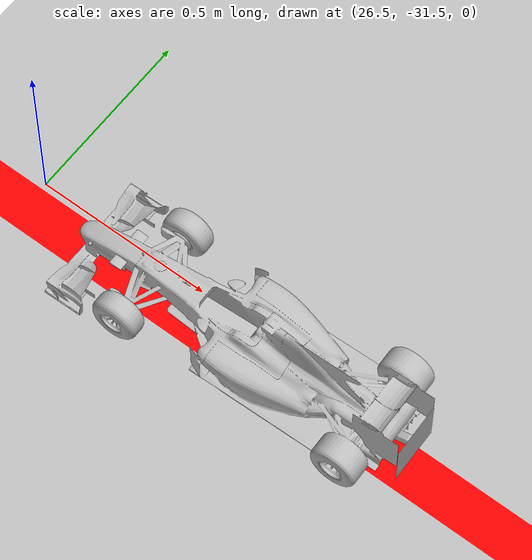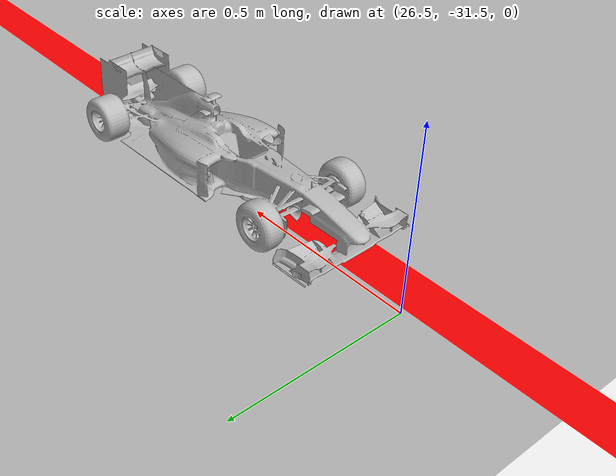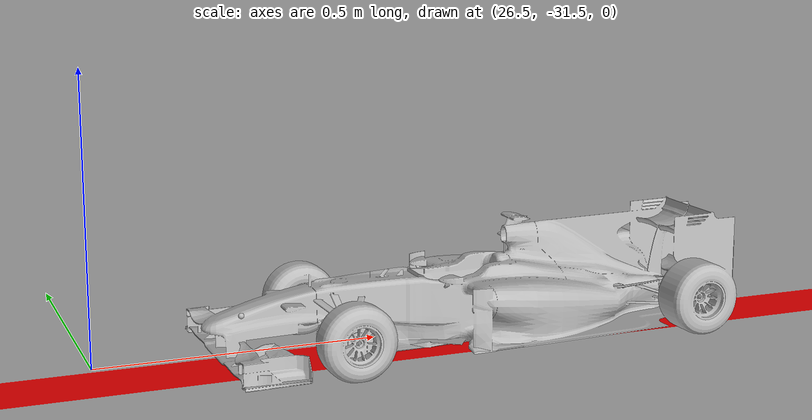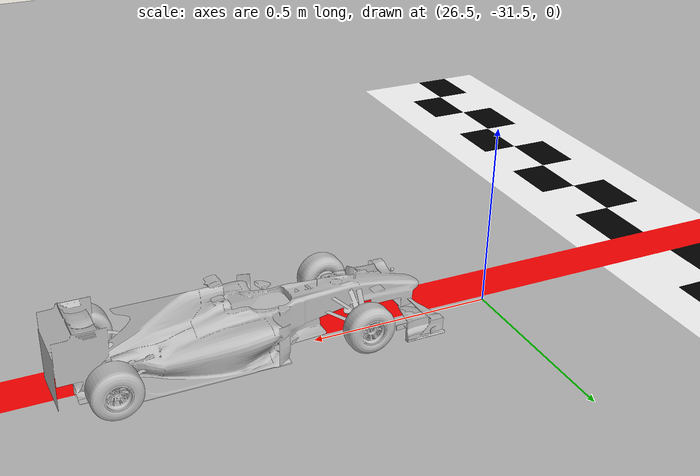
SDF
<?xml version="1.0"?>
<sdf version="1.4">
<world name="default">
    <include>
        <uri>model://montmelo_line</uri>
        <pose>0 0 0 0 0 0</pose>
    </include>
    <include>
        <uri>model://f1_renault</uri>
        <!-- NORMAL-->
        <pose>27.18 -31.55 0.00 0.00 0.01 -3.12</pose>
        <!-- 1st difficult turn -->
        <!-- 2nd diffult turn -->
        <!-- 180º turn NORMAL -->
    </include>
    <gui fullscreen='0'>
        <camera name='user_camera'>
        <pose frame=''>36.59 -32.77 2.64 0.00 0.23 2.85</pose>
        <view_controller>orbit</view_controller>
        <projection_type>perspective</projection_type>
        </camera>
    </gui>
    <scene>
        <sky>
            <clouds>
                <speed>12</speed>
            </clouds>
        </sky>
    </scene>
</world>
</sdf>

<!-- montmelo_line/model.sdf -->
<sdf version="1.4">
  <model name="montmelo">
    <static>true</static>
    <link name="montmelo">
      <pose>0 0 0 0 0 0</pose>
      <collision name="collision">
        <geometry>
          <plane>
            <size> 700 500</size>
          </plane>
        </geometry>
      </collision>
      <visual name="visual">
        <geometry>
          <mesh>
            <uri>model://montmelo_line/meshes/montmelo.dae</uri>
          </mesh>
        </geometry>
      </visual>
    </link>
    <link name="pared">
      <collision name="collision">
        <geometry>
          <mesh>
            <uri>model://montmelo_line/meshes/pared.stl</uri>
          </mesh>
        </geometry>
      </collision>
    </link>
  </model>
</sdf>

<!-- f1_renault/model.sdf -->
<sdf version="1.9">
  <model name="f1_renault">
    <pose>0 0 0 0 0 0</pose>
    <static>false</static>

    <link name="f1">
      <pose>0 0 0 0 0 0</pose>
      <inertial>
        <mass>10</mass>
        <inertia>
          <ixx>1</ixx>
          <ixy>0.0</ixy>
          <iyy>1</iyy>
          <ixz>0.0</ixz>
          <iyz>0.0</iyz>
          <izz>1.0</izz>
        </inertia>
      </inertial>

      <collision name="collision">
        <geometry>
          <mesh>
            <uri>model://f1_renault/Renault/Car.obj</uri>
            <scale>0.2 0.2 0.2</scale>
          </mesh>
        </geometry>
      </collision>

      <visual name="visual">
        <geometry>
          <mesh>
            <uri>model://f1_renault/Renault/Car.obj</uri>
            <scale>0.2 0.2 0.2</scale>
          </mesh>
        </geometry>
      </visual>

      <visual name='left_cam'>
        <pose>0.45000 0.040000 0.1000000 0.000000 -0.000000 0.0000000</pose>
        <geometry>
          <sphere>
            <radius>.005</radius>
          </sphere>
        </geometry>
      </visual>

      <sensor name="cam_f1_left" type="camera">
        <pose>0.45000 0.040000 0.1000000 0.000000 -0.000000 0.0000000</pose>
        <always_on>true</always_on>
        <visualize>true</visualize>
        <update_rate>20.000000</update_rate>
        <topic>/cam_f1_left/image_raw</topic>
        <camera name="cleft">
          <camera_info_topic>/cam_f1_left/camera_info</camera_info_topic>
          <horizontal_fov>1.570000</horizontal_fov>
          <image>
            <width>640</width>
            <height>480</height>
            <format>R8G8B8</format>
          </image>
          <clip>
            <near>0.100000</near>
            <far>15.000000</far>
          </clip>
          <noise>
            <type>gaussian</type>
            <mean>0.0</mean>
            <stddev>0.007</stddev>
          </noise>
        </camera>
      </sensor>

    </link>

    <plugin filename="gz-sim-velocity-control-system" name="gz::sim::systems::VelocityControl">
      <topic>/F1ROS/cmd_vel</topic>
    </plugin>

    <plugin filename="gz-sim-odometry-publisher-system" name="gz::sim::systems::OdometryPublisher">
      <odom_frame>odom</odom_frame>
      <robot_base_frame>xf1</robot_base_frame>
      <odom_publish_frequency>20.0</odom_publish_frequency>
      <odom_topic>F1ROS/odom</odom_topic>
      <dimensions>3</dimensions>
    </plugin>

  </model>
</sdf>
